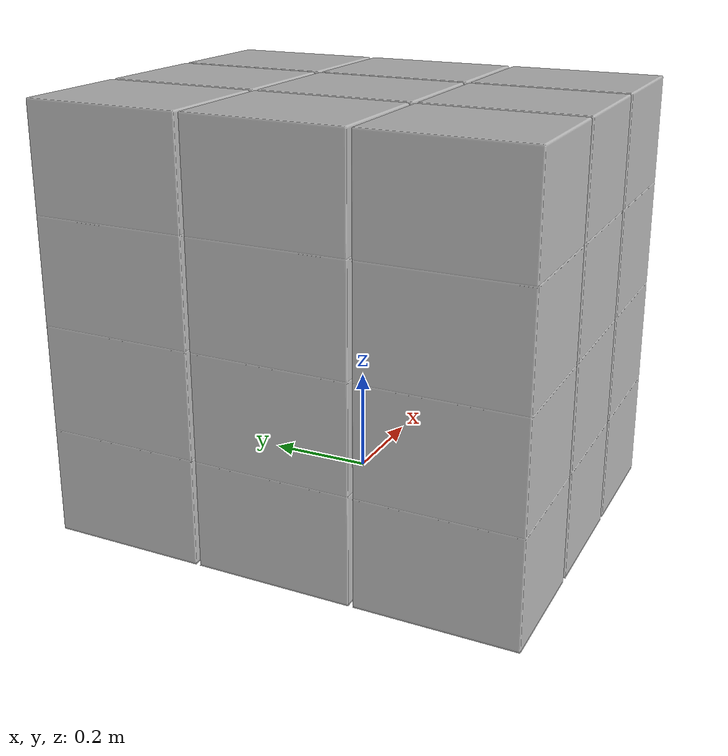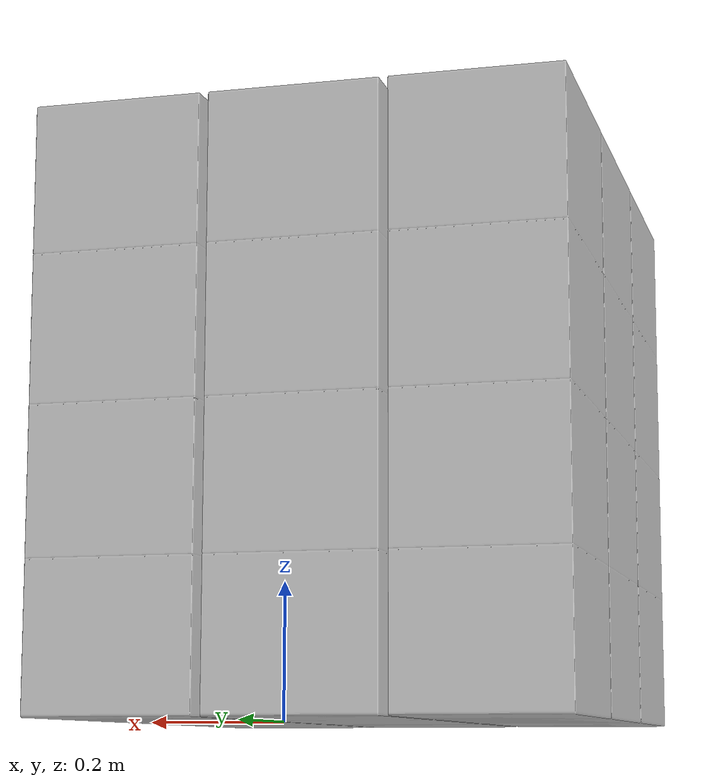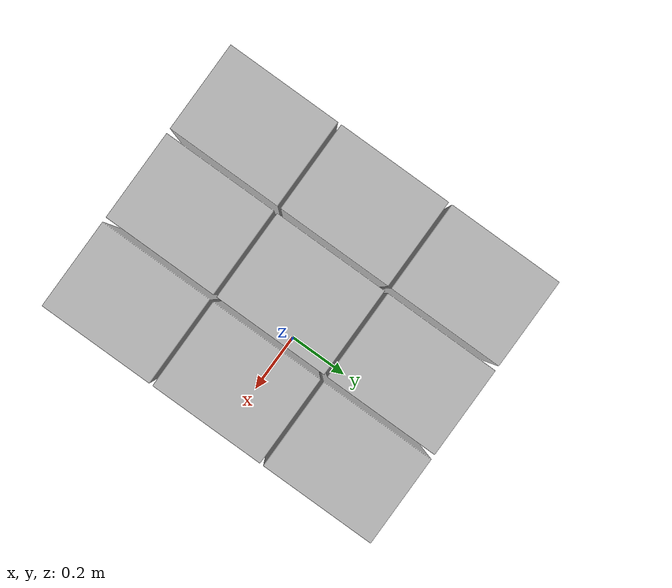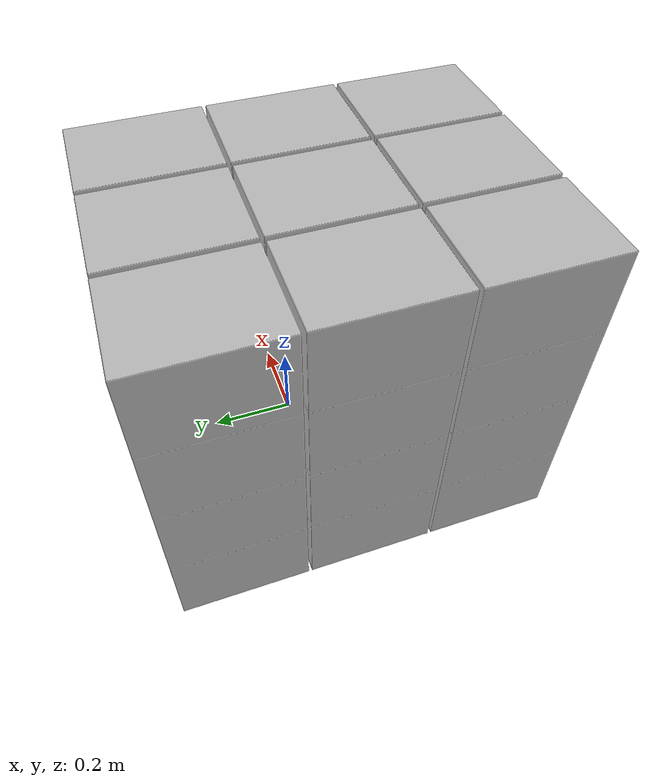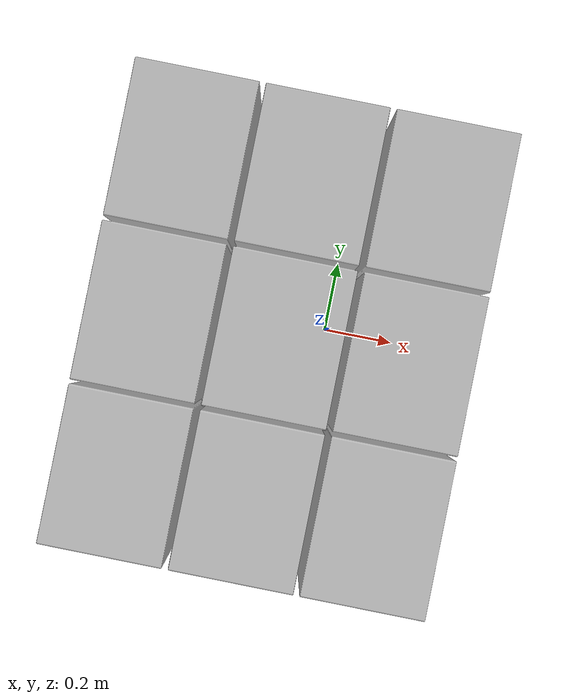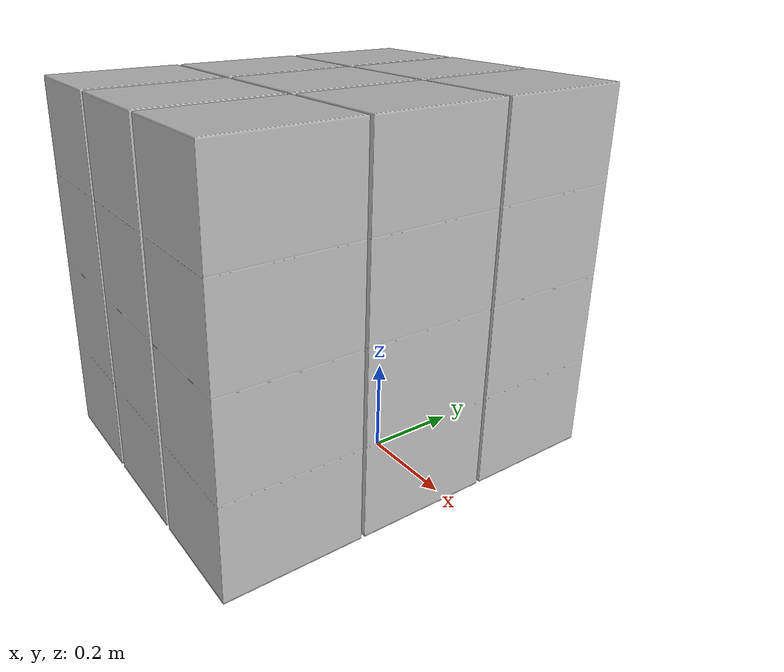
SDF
<?xml version="1.0" ?>
<sdf version="1.5">
  <model name="blue_box">

    <pose>0 0 0  0 0 0</pose>

    <static>true</static>
    <link name="link">
      <inertial>
        <mass>269.434</mass>
        <inertia>
          <ixx>1</ixx>
          <ixy>0</ixy>
          <ixz>0</ixz>
          <iyy>1</iyy>
          <iyz>0</iyz>
          <izz>1</izz>
        </inertia>
      </inertial>

      <collision name="collision">
	    <pose>0 0 0.32  0 0 0</pose>
        <geometry>
          <box>
            <size>.6 .6 0.6</size>
          </box>
        </geometry>
      </collision>

      <visual name="visual">
        <geometry>
          <mesh>
            <uri>model://blue_box/meshes/blue_stack.dae</uri>
          </mesh>
        </geometry>
      </visual>
    </link>
  </model>
</sdf>
